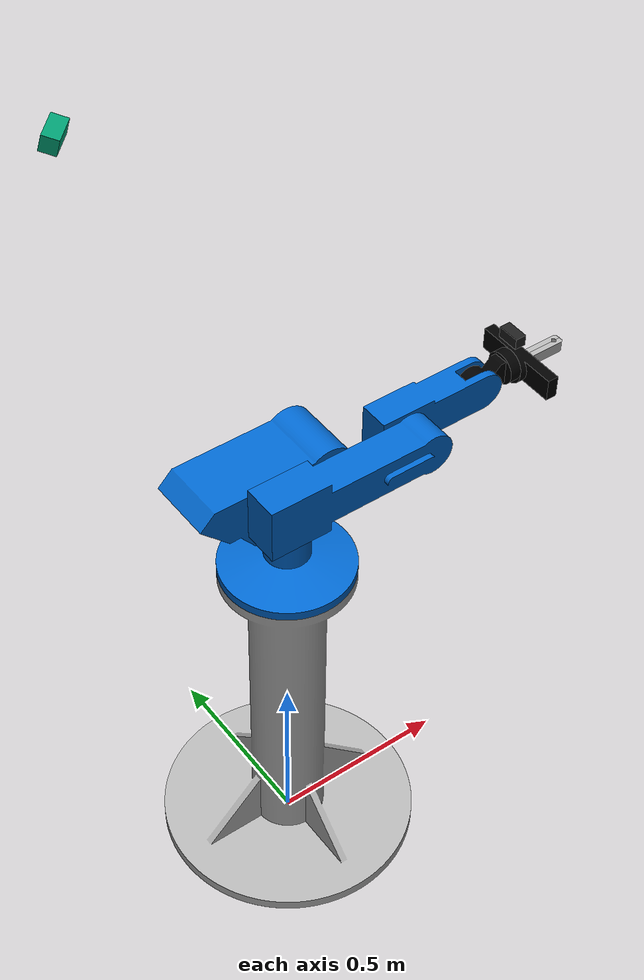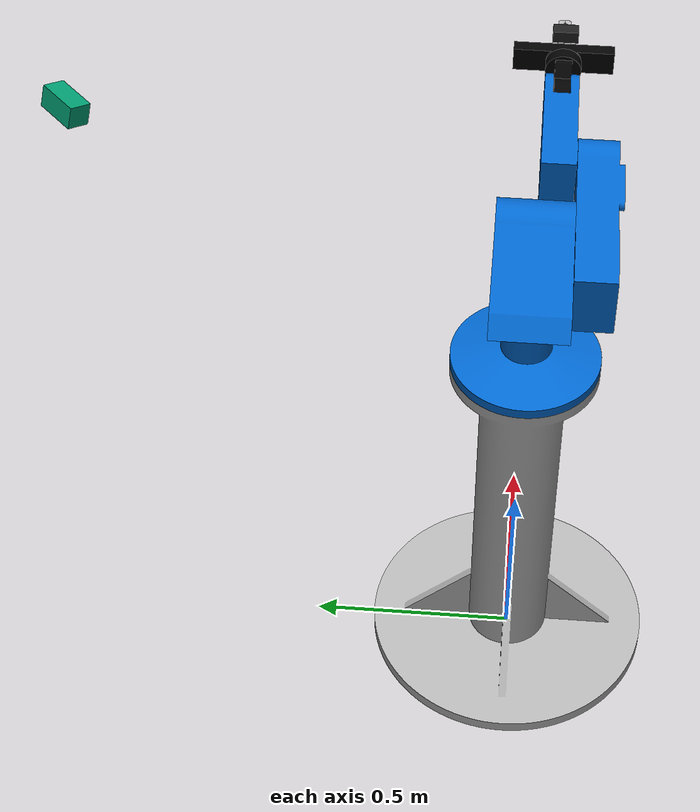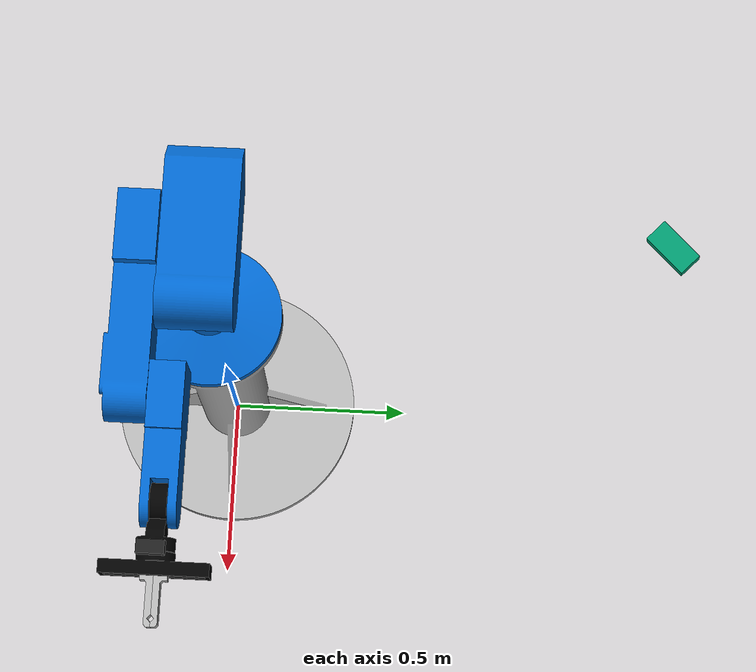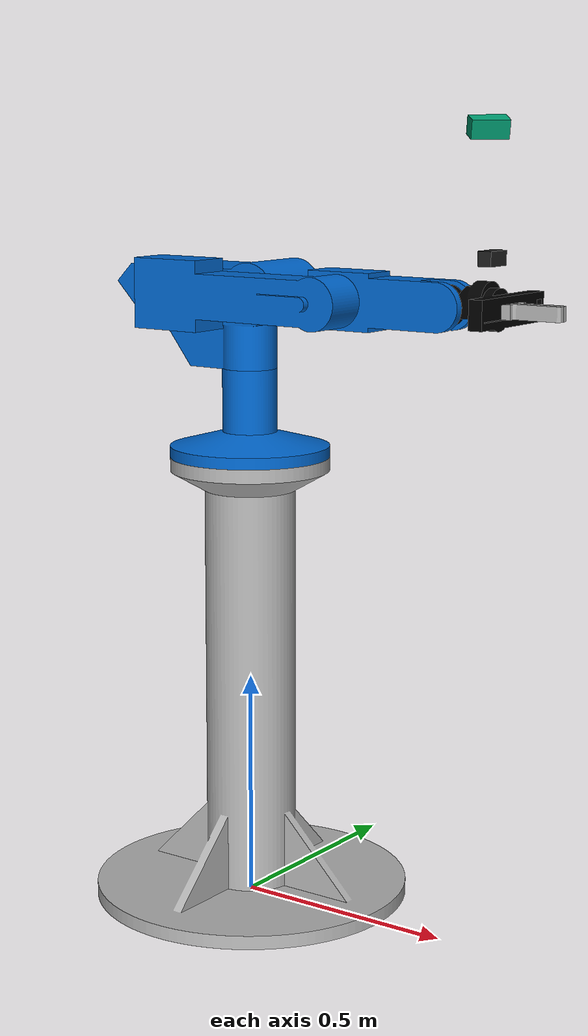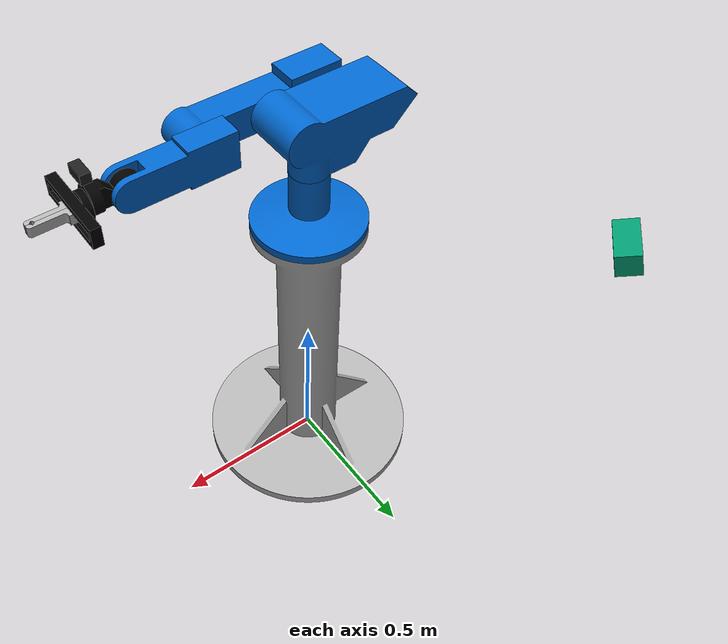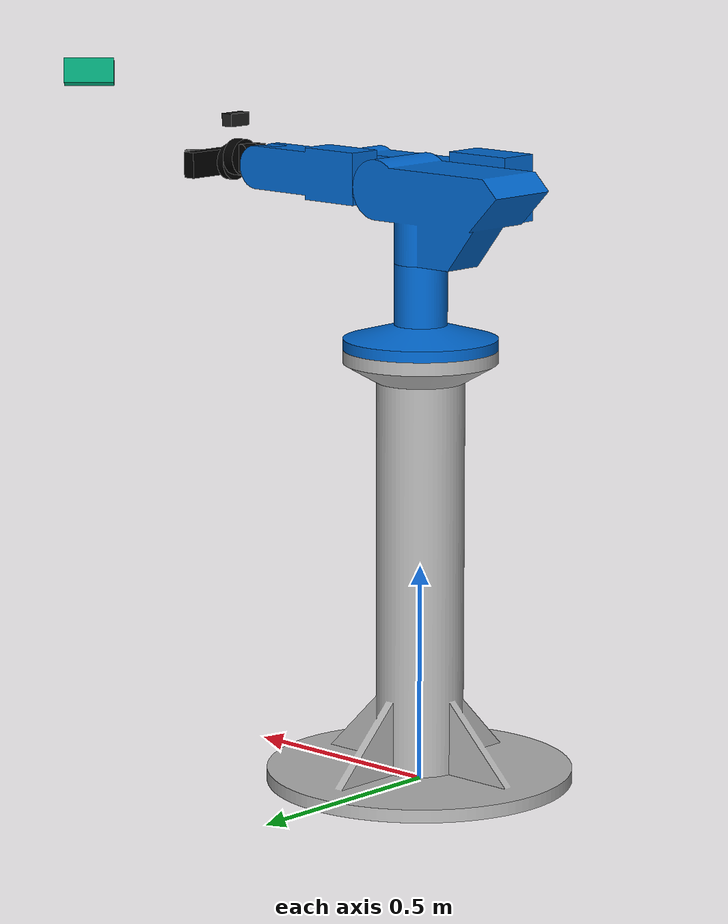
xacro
<?xml version="1.0" ?>

<robot name="scorbot_er" xmlns:xacro="http://www.ros.org/wiki/xacro">

  <!-- BEGIN - Include -->
  <xacro:include filename="$(find scorbot_er_description)/urdf/robot_parameters.xacro" />
  <xacro:include filename="$(find scorbot_er_description)/urdf/links_joints.xacro" />
  <!-- END - Include -->

  <!-- World frame (for Gazebo) -->
  <link name="world"/>

  <!-- Arm fixed to world frame  -->
  <joint name="world_support" type="fixed">
    <parent link="world"/>
    <child link="support"/>+
    <origin rpy="0 0 0" xyz="0 0 0"/>
  </joint>

  <xacro:m_link_mesh name="support" color="Grey"
                     origin_rpy="0 0 0" origin_xyz="0 0 0"
                     mass="157.633"
                     ixx="13.235" ixy="0" ixz="0"
                     iyy="13.235" iyz="0" izz="9.655"
                     meshfile="package://scorbot_er_description/meshes/support.stl"
                     meshscale="0.001 0.001 0.001" />

  <material name="Blue">
    <color rgba="0.0 0.4 0.8 1.0"/>
  </material>

  <material name="Grey">
    <color rgba="0.7 0.7 0.7 1.0"/>
  </material>

  <material name="Black">
    <color rgba="0.0 0.0 0.0 1.0"/>
  </material>

  <gazebo reference="support">
    <material>Gazebo/Grey</material>
  </gazebo>

  <gazebo reference="${link_00_name}">
    <material>Gazebo/Blue</material>
  </gazebo>

  <gazebo reference="${link_01_name}">
    <material>Gazebo/Blue</material>
  </gazebo>

  <gazebo reference="${link_02_name}">
    <material>Gazebo/Blue</material>
  </gazebo>

  <gazebo reference="${link_03_name}">
    <material>Gazebo/Blue</material>
  </gazebo>

  <gazebo reference="${link_04_name}">
    <material>Gazebo/Black</material>
  </gazebo>

  <gazebo reference="${gripper_name}">
    <material>Gazebo/Black</material>
  </gazebo>

  <gazebo reference="gripper_left">
    <material>Gazebo/White</material>
  </gazebo>

  <gazebo reference="gripper_right">
    <material>Gazebo/White</material>
  </gazebo>

  <!-- BEGIN - Robot description -->

  <joint name="support_base_link" type="fixed">
    <parent link="support"/>
    <child link="${link_00_name}"/>
    <origin rpy="0 0 0" xyz="0 0 1.0"/>
  </joint>

  <xacro:m_link_mesh name="${link_00_name}" color="Blue"
                     origin_rpy="0 0 0" origin_xyz="0.0 0.0 0.0"
                     mass="15"
                     ixx="30" ixy="0" ixz="0"
                     iyy="30" iyz="0" izz="30"
                     meshfile="package://scorbot_er_description/meshes/base_link.stl"
                     meshscale="0.001 0.001 0.001" />

  <xacro:m_joint name="${link_00_name}__${link_01_name}" type="revolute"
                 axis_xyz="0 0 1"
                 origin_rpy="0 0 0" origin_xyz="0 0 0.195"
                 parent="${link_00_name}" child="${link_01_name}"
                 limit_e="1000" limit_l="-2.3562" limit_u="2.3562" limit_v="0.5" />

  <xacro:m_link_mesh name="${link_01_name}" color="Blue"
                     origin_rpy="0 0 0" origin_xyz="0 0 0.0"
                     mass="15"
                     ixx="20" ixy="0" ixz="0"
                     iyy="20" iyz="0" izz="20"
                     meshfile="package://scorbot_er_description/meshes/link1.stl"
                     meshscale="0.001 0.001 0.001" />

  <xacro:m_joint name="${link_01_name}__${link_02_name}" type="revolute"
                 axis_xyz="0 1 0"
                 origin_rpy="0 0 0" origin_xyz="0.06 -0.0875 0.1675"
                 parent="${link_01_name}" child="${link_02_name}"
                 limit_e="1000" limit_l="-0.7854" limit_u="1.7453" limit_v="0.5" />

  <xacro:m_link_mesh name="${link_02_name}" color="Blue"
                     origin_rpy="0 0 0" origin_xyz="0 0 0"
                     mass="10"
                     ixx="10" ixy="0" ixz="0"
                     iyy="10" iyz="0" izz="10"
                     meshfile="package://scorbot_er_description/meshes/link2.stl"
                     meshscale="0.001 0.001 0.001" />

  <xacro:m_joint name="${link_02_name}__${link_03_name}" type="revolute"
                 axis_xyz="0 -1 0"
                 origin_rpy="0 0 0" origin_xyz="0.23 0 0.00"
                 parent="${link_02_name}" child="${link_03_name}"
                 limit_e="1000" limit_l="-1.8326" limit_u="1.8326" limit_v="0.5" />

  <xacro:m_link_mesh name="${link_03_name}" color="Blue"
                     origin_rpy="0 0 0" origin_xyz="0 0 0"
                     mass="7"
                     ixx="5" ixy="0" ixz="0"
                     iyy="5" iyz="0" izz="5"
                     meshfile="package://scorbot_er_description/meshes/link3.stl"
                     meshscale="0.001 0.001 0.001" />

  <xacro:m_joint name="${link_03_name}__${link_04_name}" type="revolute"
                 axis_xyz="0 -1 0"
                 origin_rpy="0 0 0" origin_xyz="0.23 0.04 0.0"
                 parent="${link_03_name}" child="${link_04_name}"
                 limit_e="1000" limit_l="-2.0" limit_u="2.0" limit_v="0.5" />

  <xacro:m_link_mesh name="${link_04_name}" color="Black"
                     origin_rpy="0 0 0" origin_xyz="0 0 0"
                     mass="2"
                     ixx="1" ixy="0" ixz="0"
                     iyy="1" iyz="0" izz="1"
                     meshfile="package://scorbot_er_description/meshes/link4.stl"
                     meshscale="0.001 0.001 0.001" />

  <!-- GRIPPER START HERE -->

  <xacro:m_joint name="${link_04_name}__${gripper_name}" type="revolute"
                 axis_xyz="1 0 0"
                 origin_rpy="0 0 0" origin_xyz="0.11 0 0"
                 parent="${link_04_name}" child="${gripper_name}"
                 limit_e="1000" limit_l="-1.57" limit_u="1.57" limit_v="0.5" />

  <xacro:m_link_mesh name="${gripper_name}" color="Black"
                     origin_rpy="0 0 0" origin_xyz="0 0 0"
                     mass="1"
                     ixx="1" ixy="0" ixz="0"
                     iyy="1" iyz="0" izz="1"
                     meshfile="package://scorbot_er_description/meshes/link5.stl"
                     meshscale="0.001 0.001 0.001" />

  <xacro:m_joint name="${gripper_name}__gripper_left" type="prismatic"
                 axis_xyz="1 0 0"
                 origin_rpy="1.5708 0 1.5708" origin_xyz="0.04 0.00 0.000"
                 parent="${gripper_name}" child="gripper_left"
                 limit_e="1000" limit_l="-0.07" limit_u="0.00" limit_v="0.5" />

  <xacro:m_link_mesh name="gripper_left" color="Grey"
                     origin_rpy="0 0 0" origin_xyz="0 0 0"
                     mass="0.1"
                     ixx="1" ixy="0" ixz="0"
                     iyy="1" iyz="0" izz="1"
                     meshfile="package://scorbot_er_description/meshes/gripper_left.stl"
                     meshscale="0.001 0.001 0.001" />

  <xacro:m_joint name="${gripper_name}__gripper_right" type="prismatic"
                 axis_xyz="1 0 0"
                 origin_rpy="1.5708 0 1.5708" origin_xyz="0.04 0.00 0.000"
                 parent="${gripper_name}" child="gripper_right"
                 limit_e="1000" limit_l="0.00" limit_u="0.07" limit_v="0.5" />

  <xacro:m_link_mesh name="gripper_right" color="Grey"
                     origin_rpy="0 0 0" origin_xyz="0 0 0"
                     mass="0.1"
                     ixx="1" ixy="0" ixz="0"
                     iyy="1" iyz="0" izz="1"
                     meshfile="package://scorbot_er_description/meshes/gripper_right.stl"
                     meshscale="0.001 0.001 0.001" />

  <!-- GRIPPER END HERE -->

  <!-- END - Robot description -->

  <gazebo>
    <plugin name="gazebo_ros_control" filename="libgazebo_ros_control.so">
      <robotSimType>gazebo_ros_control/DefaultRobotHWSim</robotSimType>
      <robotNamespace>/scorbot_er</robotNamespace>
      <legacyModeNS>true</legacyModeNS>
    </plugin>
  </gazebo>

  <gazebo reference="gripper_right">
    <mu1>0.5</mu1>
    <mu2>0.5</mu2>
    <kp>500000.0</kp>
    <kd>10.0</kd>
    <minDepth>0.001</minDepth>
    <maxVel>0.1</maxVel>
    <fdir1>1 0 0</fdir1>
  </gazebo>

  <gazebo reference="gripper_left">
    <mu1>0.5</mu1>
    <mu2>0.5</mu2>
    <kp>500000.0</kp>
    <kd>10.0</kd>
    <minDepth>0.001</minDepth>
    <maxVel>0.1</maxVel>
    <fdir1>1 0 0</fdir1>
  </gazebo>

  <!-- BEGIN - DEPTH-RGB Camera -->

  <joint name="openni_camera_joint" type="fixed">
    <axis xyz="0 1 0" />
    <origin xyz="0 ${camera_y} ${camera_z}" rpy="0 ${camera_pitch} ${camera_yaw}"/>
    <parent link="world"/>
    <child link="${camera_name}"/>
  </joint>

  <link name="${camera_name}">
    <collision>
      <origin xyz="0 0 0" rpy="0 0 0"/>
      <geometry><box size="0.05 0.1 0.05"/></geometry>
    </collision>

    <visual>
      <origin xyz="0 0 0" rpy="0 0 0"/>
      <geometry><box size="0.05 0.1 0.05"/></geometry>
    </visual>

    <inertial>
      <mass value="1e-5" /><origin xyz="0 0 0" rpy="0 0 0"/>
      <origin xyz="0 0 0" rpy="0 0 0"/>
      <inertia ixx="1e-6" ixy="0" ixz="0" iyy="1e-6" iyz="0" izz="1e-6" />
    </inertial>
  </link>

  <joint name="camera_optical_joint" type="fixed">
      <origin xyz="0 0 0" rpy="-1.5708 0.0 -1.5708" />
      <parent link="${camera_name}" />
      <child link="camera_optical_frame" />
  </joint>

  <link name="camera_optical_frame" />

  <gazebo reference="${camera_name}">
    <sensor type="depth" name="realsense_R200">
      <always_on>true</always_on>
      <visualize>false</visualize>
      <camera>
        <horizontal_fov>1.3439</horizontal_fov>
        <image>
          <width>640</width>
          <height>480</height>
          <format>R8G8B8</format>
        </image>
        <depth_camera></depth_camera>
        <clip>
          <near>0.03</near>
          <far>100</far>
        </clip>
      </camera>
      <plugin name="camera_controller" filename="libgazebo_ros_openni_kinect.so">
        <baseline>0.2</baseline>
        <alwaysOn>true</alwaysOn>
        <updateRate>10.0</updateRate>
        <cameraName>camera</cameraName>
        <frameName>camera_optical_frame</frameName>
        <imageTopicName>rgb/image_raw</imageTopicName>
        <depthImageTopicName>depth/image_raw</depthImageTopicName>
        <pointCloudTopicName>depth/points</pointCloudTopicName>
        <cameraInfoTopicName>rgb/camera_info</cameraInfoTopicName>
        <depthImageCameraInfoTopicName>depth/camera_info</depthImageCameraInfoTopicName>
        <pointCloudCutoff>0.4</pointCloudCutoff>
          <hackBaseline>0.07</hackBaseline>
          <distortionK1>0.0</distortionK1>
          <distortionK2>0.0</distortionK2>
          <distortionK3>0.0</distortionK3>
          <distortionT1>0.0</distortionT1>
          <distortionT2>0.0</distortionT2>
        <CxPrime>0.0</CxPrime>
        <Cx>0.0</Cx>
        <Cy>0.0</Cy>
        <focalLength>0.0</focalLength>
        <hackBaseline>0</hackBaseline>
      </plugin>
    </sensor>
  </gazebo>

  <!-- END - DEPTH-RGB Camera -->

  <!-- BEGIN - RGB Camera -->

  <joint name="camera_joint" type="fixed">
    <axis xyz="0 1 0" />
    <origin xyz="0 0 0.1" rpy="0 0 0"/>
    <parent link="${gripper_name}"/>
    <child link="camera_link"/>
  </joint>

  <link name="camera_link">
    <collision>
      <origin xyz="0 0 0" rpy="0 0 0"/>
      <geometry>
        <box size="0.03 0.06 0.03"/>
      </geometry>
    </collision>

    <visual>
      <origin xyz="0 0 0" rpy="0 0 0"/>
      <geometry>
        <box size="0.03 0.06 0.03"/>
      </geometry>
      <material name="black"/>
    </visual>

    <inertial>
      <mass value="1e-5" />
      <origin xyz="0 0 0" rpy="0 0 0"/>
      <inertia ixx="1e-6" ixy="0" ixz="0" iyy="1e-6" iyz="0" izz="1e-6" />
    </inertial>
  </link>

  <joint name="camera_rgb_joint" type="fixed">
    <origin xyz="0.003 0.011 0.009" rpy="0 0 0"/>
    <parent link="camera_link"/>
    <child link="camera_rgb_frame"/>
  </joint>
  <link name="camera_rgb_frame"/>

  <joint name="camera_rgb_optical_joint" type="fixed">
    <origin xyz="0 0 0" rpy="-1.57 0 -1.57"/>
    <parent link="camera_rgb_frame"/>
    <child link="camera_rgb_optical_frame"/>
  </joint>
  <link name="camera_rgb_optical_frame"/>

  <gazebo reference="camera_link">
    <sensor type="camera" name="gripper_camera">
      <update_rate>30.0</update_rate>
      <camera name="gripper">
        <horizontal_fov>1.3962634</horizontal_fov>
        <image>
          <width>800</width>
          <height>800</height>
          <format>R8G8B8</format>
        </image>
        <clip>
          <near>0.02</near>
          <far>300</far>
        </clip>
        <noise>
          <type>gaussian</type>
          <!-- Noise is sampled independently per pixel on each frame. That pixel's noise value is added to each of its color channels, which at that point lie in the range [0,1]. -->
          <mean>0.0</mean>
          <stddev>0.007</stddev>
        </noise>
      </camera>
      <plugin name="camera_controller" filename="libgazebo_ros_camera.so">
        <alwaysOn>true</alwaysOn>
        <updateRate>30.0</updateRate>
        <cameraName>gripper_camera</cameraName>
        <imageTopicName>image_raw</imageTopicName>
        <cameraInfoTopicName>camera_info</cameraInfoTopicName>
        <frameName>camera_rgb_optical_frame</frameName>
        <hackBaseline>0.07</hackBaseline>
        <distortionK1>0.0</distortionK1>
        <distortionK2>0.0</distortionK2>
        <distortionK3>0.0</distortionK3>
        <distortionT1>0.0</distortionT1>
        <distortionT2>0.0</distortionT2>
      </plugin>
    </sensor>
  </gazebo>

  <gazebo reference="camera_link">
    <material>Gazebo/Red</material>
  </gazebo>

  <!-- END - RGB Camera -->

</robot>

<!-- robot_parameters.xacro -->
<robot xmlns:xacro="http://www.ros.org/wiki/xacro">
  <xacro:property name="support_high" value="1.0" />
  <xacro:property name="link_00_name" value="base_link" />
  <xacro:property name="link_01_name" value="link_01" />
  <xacro:property name="link_02_name" value="link_02" />
  <xacro:property name="link_03_name" value="link_03" />
  <xacro:property name="link_04_name" value="link_04" />
  <xacro:property name="gripper_name" value="gripper" />
  <xacro:property name="camera_z" value="1.7" />
  <xacro:property name="camera_y" value="1.0" />
  <xacro:property name="camera_pitch" value="0.2618" />
  <xacro:property name="camera_yaw" value="-0.7854" />
  <xacro:property name="camera_name" value="openni_camera_link" />
</robot>

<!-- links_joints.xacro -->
<robot xmlns:xacro="http://www.ros.org/wiki/xacro">

  <xacro:macro name="m_joint" params="name type axis_xyz origin_rpy origin_xyz parent child limit_e limit_l limit_u limit_v">
    <joint name="${name}" type="${type}">
      <axis xyz="${axis_xyz}" />
      <limit effort="${limit_e}" lower="${limit_l}" upper="${limit_u}" velocity="${limit_v}" />
      <origin rpy="${origin_rpy}" xyz="${origin_xyz}" />
      <parent link="${parent}" />
      <child link="${child}" />
    </joint>
    <transmission name="trans_${name}">
      <type>transmission_interface/SimpleTransmission</type>
      <joint name="${name}">
        <hardwareInterface>hardware_interface/PositionJointInterface</hardwareInterface>
      </joint>
      <actuator name="motor_${name}">
        <hardwareInterface>hardware_interface/PositionJointInterface</hardwareInterface>
        <mechanicalReduction>100</mechanicalReduction>
      </actuator>
    </transmission>
  </xacro:macro>

  <xacro:macro name="m_link_mesh" params="name color origin_xyz origin_rpy meshfile meshscale mass ixx ixy ixz iyy iyz izz">
    <link name="${name}">
      <inertial>
        <mass value="${mass}" />
        <origin rpy="${origin_rpy}" xyz="${origin_xyz}" />
        <inertia ixx="${ixx}" ixy="${ixy}" ixz="${ixz}" iyy="${iyy}" iyz="${iyz}" izz="${izz}" />
      </inertial>
      <collision>
        <origin rpy="${origin_rpy}" xyz="${origin_xyz}" />
        <geometry>
          <mesh filename="${meshfile}" scale="${meshscale}"/>
        </geometry>
      </collision>
      <visual>
        <origin rpy="${origin_rpy}" xyz="${origin_xyz}" />
        <geometry>
          <mesh filename="${meshfile}" scale="${meshscale}"/>
        </geometry>
        <material name="${color}"/>
      </visual>
    </link>
  </xacro:macro>

</robot>
